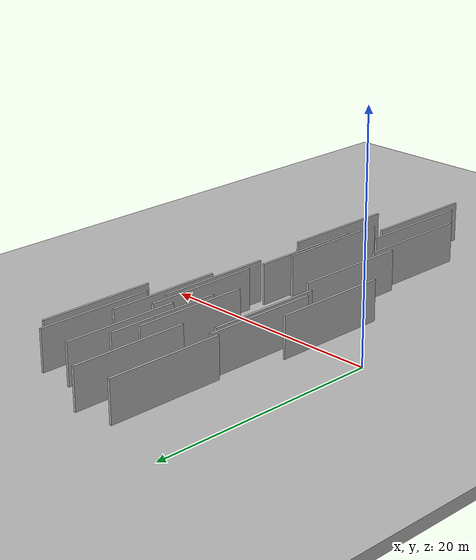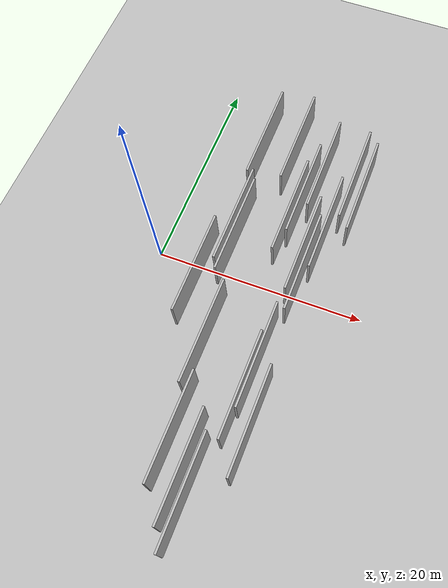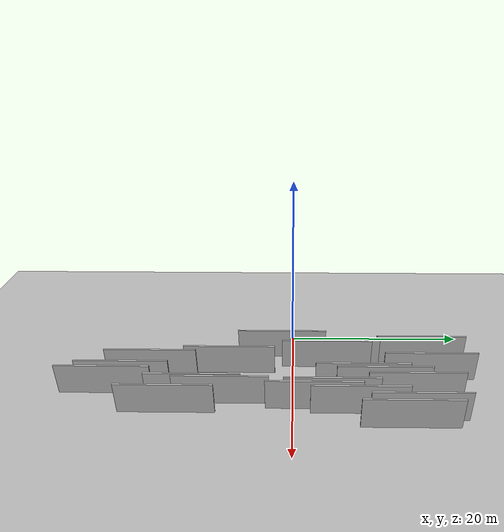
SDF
<?xml version="1.0" encoding="utf-8"?>

<sdf version="1.6">

   <world name="default">

      <gui fullscreen="0">

         <camera name="user_camera">

            <pose>-15 0 4.57585 0 0 0</pose>

            <view_controller>orbit</view_controller>

         </camera>

      </gui>

      <scene>

         <sky>

           <clouds>

             <speed>12</speed>

           </clouds>

         </sky>

         <ambient>0.4 0.4 0.4 1</ambient>

         <background>0.7 0.7 0.7 1</background>

         <shadows>1</shadows>

      </scene>

      <gravity>0 0 -9.8066</gravity>

      <magnetic_field>6e-06 2.3e-05 -4.2e-05</magnetic_field>

      <physics default="0" name="default_physics" type="ode">

         <ode>

            <solver>

               <type>quick</type>

               <iters>10</iters>

               <sor>1.0</sor>

               <use_dynamic_moi_rescaling>0</use_dynamic_moi_rescaling>

            </solver>

            <constraints>

               <cfm>0</cfm>

               <erp>0.2</erp>

               <contact_max_correcting_vel>100</contact_max_correcting_vel>

               <contact_surface_layer>0.001</contact_surface_layer>

            </constraints>

         </ode>

         <max_step_size>0.004</max_step_size>

         <real_time_factor>1</real_time_factor>

         <real_time_update_rate>250</real_time_update_rate>

      </physics>

      <light name="sun" type="directional">

         <cast_shadows>1</cast_shadows>

         <pose>0 0 10 0 0 0</pose>

         <diffuse>0.8 0.8 0.8 1</diffuse>

         <specular>0.2 0.2 0.2 1</specular>

         <attenuation>

            <range>1000</range>

            <constant>0.9</constant>

            <linear>0.01</linear>

            <quadratic>0.001</quadratic>

         </attenuation>

         <direction>-0.5 0.1 -0.9</direction>

      </light>

      <include>

         <name>ground_plane_1</name>

         <uri>model://HANNAS_ground_plane</uri>

         <pose>0 0 0  0 0 0</pose>

      </include>

      <include>

         <name>ground_plane_2</name>

         <uri>model://HANNAS_ground_plane</uri>

         <pose>100 0 0  0 0 0</pose>

      </include>

      <model name="HANNAS_wall_1">

         <static>1</static>

         <pose frame="">10.3360 -18.1644 0.0 0.000000 0.000000 1.570796</pose>

         <link name="link">

            <pose frame="">0 0 2.00 0 0 0</pose>

            <collision name="collision">

               <geometry>

                  <box>

                     <size>10.00 0.2 4.00</size>

                  </box>

               </geometry>

               <max_contacts>10</max_contacts>

               <surface>

                  <contact>

                     <ode/>

                  </contact>

                  <bounce/>

                  <friction>

                     <torsional>

                        <ode/>

                     </torsional>

                     <ode/>

                  </friction>

               </surface>

            </collision>

            <visual name="visual">

               <cast_shadows>0</cast_shadows>

               <geometry>

                  <box>

                     <size>10.00 0.2 4.00</size>

                  </box>

               </geometry>

               <material>

                  <script>

                     <uri>model://HANNAS_wall/materials/scripts</uri>

                     <uri>model://HANNAS_wall/materials/textures</uri>

                     <name>vrc/HANNAS_wall</name>

                  </script>

               </material>

            </visual>

            <self_collide>0</self_collide>

            <enable_wind>0</enable_wind>

            <kinematic>0</kinematic>

         </link>

      </model>

      <model name="HANNAS_wall_2">

         <static>1</static>

         <pose frame="">4.4183 -1.2426 0.0 0.000000 0.000000 1.570796</pose>

         <link name="link">

            <pose frame="">0 0 2.00 0 0 0</pose>

            <collision name="collision">

               <geometry>

                  <box>

                     <size>10.00 0.2 4.00</size>

                  </box>

               </geometry>

               <max_contacts>10</max_contacts>

               <surface>

                  <contact>

                     <ode/>

                  </contact>

                  <bounce/>

                  <friction>

                     <torsional>

                        <ode/>

                     </torsional>

                     <ode/>

                  </friction>

               </surface>

            </collision>

            <visual name="visual">

               <cast_shadows>0</cast_shadows>

               <geometry>

                  <box>

                     <size>10.00 0.2 4.00</size>

                  </box>

               </geometry>

               <material>

                  <script>

                     <uri>model://HANNAS_wall/materials/scripts</uri>

                     <uri>model://HANNAS_wall/materials/textures</uri>

                     <name>vrc/HANNAS_wall</name>

                  </script>

               </material>

            </visual>

            <self_collide>0</self_collide>

            <enable_wind>0</enable_wind>

            <kinematic>0</kinematic>

         </link>

      </model>

      <model name="HANNAS_wall_3">

         <static>1</static>

         <pose frame="">12.9490 4.0539 0.0 0.000000 0.000000 1.570796</pose>

         <link name="link">

            <pose frame="">0 0 2.00 0 0 0</pose>

            <collision name="collision">

               <geometry>

                  <box>

                     <size>10.00 0.2 4.00</size>

                  </box>

               </geometry>

               <max_contacts>10</max_contacts>

               <surface>

                  <contact>

                     <ode/>

                  </contact>

                  <bounce/>

                  <friction>

                     <torsional>

                        <ode/>

                     </torsional>

                     <ode/>

                  </friction>

               </surface>

            </collision>

            <visual name="visual">

               <cast_shadows>0</cast_shadows>

               <geometry>

                  <box>

                     <size>10.00 0.2 4.00</size>

                  </box>

               </geometry>

               <material>

                  <script>

                     <uri>model://HANNAS_wall/materials/scripts</uri>

                     <uri>model://HANNAS_wall/materials/textures</uri>

                     <name>vrc/HANNAS_wall</name>

                  </script>

               </material>

            </visual>

            <self_collide>0</self_collide>

            <enable_wind>0</enable_wind>

            <kinematic>0</kinematic>

         </link>

      </model>

      <model name="HANNAS_wall_4">

         <static>1</static>

         <pose frame="">5.8688 4.7515 0.0 0.000000 0.000000 1.570796</pose>

         <link name="link">

            <pose frame="">0 0 2.00 0 0 0</pose>

            <collision name="collision">

               <geometry>

                  <box>

                     <size>10.00 0.2 4.00</size>

                  </box>

               </geometry>

               <max_contacts>10</max_contacts>

               <surface>

                  <contact>

                     <ode/>

                  </contact>

                  <bounce/>

                  <friction>

                     <torsional>

                        <ode/>

                     </torsional>

                     <ode/>

                  </friction>

               </surface>

            </collision>

            <visual name="visual">

               <cast_shadows>0</cast_shadows>

               <geometry>

                  <box>

                     <size>10.00 0.2 4.00</size>

                  </box>

               </geometry>

               <material>

                  <script>

                     <uri>model://HANNAS_wall/materials/scripts</uri>

                     <uri>model://HANNAS_wall/materials/textures</uri>

                     <name>vrc/HANNAS_wall</name>

                  </script>

               </material>

            </visual>

            <self_collide>0</self_collide>

            <enable_wind>0</enable_wind>

            <kinematic>0</kinematic>

         </link>

      </model>

      <model name="HANNAS_wall_5">

         <static>1</static>

         <pose frame="">12.7881 -7.4069 0.0 0.000000 0.000000 1.570796</pose>

         <link name="link">

            <pose frame="">0 0 2.00 0 0 0</pose>

            <collision name="collision">

               <geometry>

                  <box>

                     <size>10.00 0.2 4.00</size>

                  </box>

               </geometry>

               <max_contacts>10</max_contacts>

               <surface>

                  <contact>

                     <ode/>

                  </contact>

                  <bounce/>

                  <friction>

                     <torsional>

                        <ode/>

                     </torsional>

                     <ode/>

                  </friction>

               </surface>

            </collision>

            <visual name="visual">

               <cast_shadows>0</cast_shadows>

               <geometry>

                  <box>

                     <size>10.00 0.2 4.00</size>

                  </box>

               </geometry>

               <material>

                  <script>

                     <uri>model://HANNAS_wall/materials/scripts</uri>

                     <uri>model://HANNAS_wall/materials/textures</uri>

                     <name>vrc/HANNAS_wall</name>

                  </script>

               </material>

            </visual>

            <self_collide>0</self_collide>

            <enable_wind>0</enable_wind>

            <kinematic>0</kinematic>

         </link>

      </model>

      <model name="HANNAS_wall_6">

         <static>1</static>

         <pose frame="">14.2670 -12.8791 0.0 0.000000 0.000000 1.570796</pose>

         <link name="link">

            <pose frame="">0 0 2.00 0 0 0</pose>

            <collision name="collision">

               <geometry>

                  <box>

                     <size>10.00 0.2 4.00</size>

                  </box>

               </geometry>

               <max_contacts>10</max_contacts>

               <surface>

                  <contact>

                     <ode/>

                  </contact>

                  <bounce/>

                  <friction>

                     <torsional>

                        <ode/>

                     </torsional>

                     <ode/>

                  </friction>

               </surface>

            </collision>

            <visual name="visual">

               <cast_shadows>0</cast_shadows>

               <geometry>

                  <box>

                     <size>10.00 0.2 4.00</size>

                  </box>

               </geometry>

               <material>

                  <script>

                     <uri>model://HANNAS_wall/materials/scripts</uri>

                     <uri>model://HANNAS_wall/materials/textures</uri>

                     <name>vrc/HANNAS_wall</name>

                  </script>

               </material>

            </visual>

            <self_collide>0</self_collide>

            <enable_wind>0</enable_wind>

            <kinematic>0</kinematic>

         </link>

      </model>

      <model name="HANNAS_wall_7">

         <static>1</static>

         <pose frame="">6.3783 3.7892 0.0 0.000000 0.000000 1.570796</pose>

         <link name="link">

            <pose frame="">0 0 2.00 0 0 0</pose>

            <collision name="collision">

               <geometry>

                  <box>

                     <size>10.00 0.2 4.00</size>

                  </box>

               </geometry>

               <max_contacts>10</max_contacts>

               <surface>

                  <contact>

                     <ode/>

                  </contact>

                  <bounce/>

                  <friction>

                     <torsional>

                        <ode/>

                     </torsional>

                     <ode/>

                  </friction>

               </surface>

            </collision>

            <visual name="visual">

               <cast_shadows>0</cast_shadows>

               <geometry>

                  <box>

                     <size>10.00 0.2 4.00</size>

                  </box>

               </geometry>

               <material>

                  <script>

                     <uri>model://HANNAS_wall/materials/scripts</uri>

                     <uri>model://HANNAS_wall/materials/textures</uri>

                     <name>vrc/HANNAS_wall</name>

                  </script>

               </material>

            </visual>

            <self_collide>0</self_collide>

            <enable_wind>0</enable_wind>

            <kinematic>0</kinematic>

         </link>

      </model>

      <model name="HANNAS_wall_8">

         <static>1</static>

         <pose frame="">15.1553 12.7467 0.0 0.000000 0.000000 1.570796</pose>

         <link name="link">

            <pose frame="">0 0 2.00 0 0 0</pose>

            <collision name="collision">

               <geometry>

                  <box>

                     <size>10.00 0.2 4.00</size>

                  </box>

               </geometry>

               <max_contacts>10</max_contacts>

               <surface>

                  <contact>

                     <ode/>

                  </contact>

                  <bounce/>

                  <friction>

                     <torsional>

                        <ode/>

                     </torsional>

                     <ode/>

                  </friction>

               </surface>

            </collision>

            <visual name="visual">

               <cast_shadows>0</cast_shadows>

               <geometry>

                  <box>

                     <size>10.00 0.2 4.00</size>

                  </box>

               </geometry>

               <material>

                  <script>

                     <uri>model://HANNAS_wall/materials/scripts</uri>

                     <uri>model://HANNAS_wall/materials/textures</uri>

                     <name>vrc/HANNAS_wall</name>

                  </script>

               </material>

            </visual>

            <self_collide>0</self_collide>

            <enable_wind>0</enable_wind>

            <kinematic>0</kinematic>

         </link>

      </model>

      <model name="HANNAS_wall_9">

         <static>1</static>

         <pose frame="">11.2612 -19.9085 0.0 0.000000 0.000000 1.570796</pose>

         <link name="link">

            <pose frame="">0 0 2.00 0 0 0</pose>

            <collision name="collision">

               <geometry>

                  <box>

                     <size>10.00 0.2 4.00</size>

                  </box>

               </geometry>

               <max_contacts>10</max_contacts>

               <surface>

                  <contact>

                     <ode/>

                  </contact>

                  <bounce/>

                  <friction>

                     <torsional>

                        <ode/>

                     </torsional>

                     <ode/>

                  </friction>

               </surface>

            </collision>

            <visual name="visual">

               <cast_shadows>0</cast_shadows>

               <geometry>

                  <box>

                     <size>10.00 0.2 4.00</size>

                  </box>

               </geometry>

               <material>

                  <script>

                     <uri>model://HANNAS_wall/materials/scripts</uri>

                     <uri>model://HANNAS_wall/materials/textures</uri>

                     <name>vrc/HANNAS_wall</name>

                  </script>

               </material>

            </visual>

            <self_collide>0</self_collide>

            <enable_wind>0</enable_wind>

            <kinematic>0</kinematic>

         </link>

      </model>

      <model name="HANNAS_wall_10">

         <static>1</static>

         <pose frame="">16.2234 11.6991 0.0 0.000000 0.000000 1.570796</pose>

         <link name="link">

            <pose frame="">0 0 2.00 0 0 0</pose>

            <collision name="collision">

               <geometry>

                  <box>

                     <size>10.00 0.2 4.00</size>

                  </box>

               </geometry>

               <max_contacts>10</max_contacts>

               <surface>

                  <contact>

                     <ode/>

                  </contact>

                  <bounce/>

                  <friction>

                     <torsional>

                        <ode/>

                     </torsional>

                     <ode/>

                  </friction>

               </surface>

            </collision>

            <visual name="visual">

               <cast_shadows>0</cast_shadows>

               <geometry>

                  <box>

                     <size>10.00 0.2 4.00</size>

                  </box>

               </geometry>

               <material>

                  <script>

                     <uri>model://HANNAS_wall/materials/scripts</uri>

                     <uri>model://HANNAS_wall/materials/textures</uri>

                     <name>vrc/HANNAS_wall</name>

                  </script>

               </material>

            </visual>

            <self_collide>0</self_collide>

            <enable_wind>0</enable_wind>

            <kinematic>0</kinematic>

         </link>

      </model>

      <model name="HANNAS_wall_11">

         <static>1</static>

         <pose frame="">8.5906 14.9380 0.0 0.000000 0.000000 1.570796</pose>

         <link name="link">

            <pose frame="">0 0 2.00 0 0 0</pose>

            <collision name="collision">

               <geometry>

                  <box>

                     <size>10.00 0.2 4.00</size>

                  </box>

               </geometry>

               <max_contacts>10</max_contacts>

               <surface>

                  <contact>

                     <ode/>

                  </contact>

                  <bounce/>

                  <friction>

                     <torsional>

                        <ode/>

                     </torsional>

                     <ode/>

                  </friction>

               </surface>

            </collision>

            <visual name="visual">

               <cast_shadows>0</cast_shadows>

               <geometry>

                  <box>

                     <size>10.00 0.2 4.00</size>

                  </box>

               </geometry>

               <material>

                  <script>

                     <uri>model://HANNAS_wall/materials/scripts</uri>

                     <uri>model://HANNAS_wall/materials/textures</uri>

                     <name>vrc/HANNAS_wall</name>

                  </script>

               </material>

            </visual>

            <self_collide>0</self_collide>

            <enable_wind>0</enable_wind>

            <kinematic>0</kinematic>

         </link>

      </model>

      <model name="HANNAS_wall_12">

         <static>1</static>

         <pose frame="">12.4415 -10.3054 0.0 0.000000 0.000000 1.570796</pose>

         <link name="link">

            <pose frame="">0 0 2.00 0 0 0</pose>

            <collision name="collision">

               <geometry>

                  <box>

                     <size>10.00 0.2 4.00</size>

                  </box>

               </geometry>

               <max_contacts>10</max_contacts>

               <surface>

                  <contact>

                     <ode/>

                  </contact>

                  <bounce/>

                  <friction>

                     <torsional>

                        <ode/>

                     </torsional>

                     <ode/>

                  </friction>

               </surface>

            </collision>

            <visual name="visual">

               <cast_shadows>0</cast_shadows>

               <geometry>

                  <box>

                     <size>10.00 0.2 4.00</size>

                  </box>

               </geometry>

               <material>

                  <script>

                     <uri>model://HANNAS_wall/materials/scripts</uri>

                     <uri>model://HANNAS_wall/materials/textures</uri>

                     <name>vrc/HANNAS_wall</name>

                  </script>

               </material>

            </visual>

            <self_collide>0</self_collide>

            <enable_wind>0</enable_wind>

            <kinematic>0</kinematic>

         </link>

      </model>

      <model name="HANNAS_wall_13">

         <static>1</static>

         <pose frame="">5.3582 14.4450 0.0 0.000000 0.000000 1.570796</pose>

         <link name="link">

            <pose frame="">0 0 2.00 0 0 0</pose>

            <collision name="collision">

               <geometry>

                  <box>

                     <size>10.00 0.2 4.00</size>

                  </box>

               </geometry>

               <max_contacts>10</max_contacts>

               <surface>

                  <contact>

                     <ode/>

                  </contact>

                  <bounce/>

                  <friction>

                     <torsional>

                        <ode/>

                     </torsional>

                     <ode/>

                  </friction>

               </surface>

            </collision>

            <visual name="visual">

               <cast_shadows>0</cast_shadows>

               <geometry>

                  <box>

                     <size>10.00 0.2 4.00</size>

                  </box>

               </geometry>

               <material>

                  <script>

                     <uri>model://HANNAS_wall/materials/scripts</uri>

                     <uri>model://HANNAS_wall/materials/textures</uri>

                     <name>vrc/HANNAS_wall</name>

                  </script>

               </material>

            </visual>

            <self_collide>0</self_collide>

            <enable_wind>0</enable_wind>

            <kinematic>0</kinematic>

         </link>

      </model>

      <model name="HANNAS_wall_14">

         <static>1</static>

         <pose frame="">7.5730 -6.9939 0.0 0.000000 0.000000 1.570796</pose>

         <link name="link">

            <pose frame="">0 0 2.00 0 0 0</pose>

            <collision name="collision">

               <geometry>

                  <box>

                     <size>10.00 0.2 4.00</size>

                  </box>

               </geometry>

               <max_contacts>10</max_contacts>

               <surface>

                  <contact>

                     <ode/>

                  </contact>

                  <bounce/>

                  <friction>

                     <torsional>

                        <ode/>

                     </torsional>

                     <ode/>

                  </friction>

               </surface>

            </collision>

            <visual name="visual">

               <cast_shadows>0</cast_shadows>

               <geometry>

                  <box>

                     <size>10.00 0.2 4.00</size>

                  </box>

               </geometry>

               <material>

                  <script>

                     <uri>model://HANNAS_wall/materials/scripts</uri>

                     <uri>model://HANNAS_wall/materials/textures</uri>

                     <name>vrc/HANNAS_wall</name>

                  </script>

               </material>

            </visual>

            <self_collide>0</self_collide>

            <enable_wind>0</enable_wind>

            <kinematic>0</kinematic>

         </link>

      </model>

      <model name="HANNAS_wall_15">

         <static>1</static>

         <pose frame="">12.0064 12.8541 0.0 0.000000 0.000000 1.570796</pose>

         <link name="link">

            <pose frame="">0 0 2.00 0 0 0</pose>

            <collision name="collision">

               <geometry>

                  <box>

                     <size>10.00 0.2 4.00</size>

                  </box>

               </geometry>

               <max_contacts>10</max_contacts>

               <surface>

                  <contact>

                     <ode/>

                  </contact>

                  <bounce/>

                  <friction>

                     <torsional>

                        <ode/>

                     </torsional>

                     <ode/>

                  </friction>

               </surface>

            </collision>

            <visual name="visual">

               <cast_shadows>0</cast_shadows>

               <geometry>

                  <box>

                     <size>10.00 0.2 4.00</size>

                  </box>

               </geometry>

               <material>

                  <script>

                     <uri>model://HANNAS_wall/materials/scripts</uri>

                     <uri>model://HANNAS_wall/materials/textures</uri>

                     <name>vrc/HANNAS_wall</name>

                  </script>

               </material>

            </visual>

            <self_collide>0</self_collide>

            <enable_wind>0</enable_wind>

            <kinematic>0</kinematic>

         </link>

      </model>

      <model name="HANNAS_wall_16">

         <static>1</static>

         <pose frame="">8.2997 -15.5240 0.0 0.000000 0.000000 1.570796</pose>

         <link name="link">

            <pose frame="">0 0 2.00 0 0 0</pose>

            <collision name="collision">

               <geometry>

                  <box>

                     <size>10.00 0.2 4.00</size>

                  </box>

               </geometry>

               <max_contacts>10</max_contacts>

               <surface>

                  <contact>

                     <ode/>

                  </contact>

                  <bounce/>

                  <friction>

                     <torsional>

                        <ode/>

                     </torsional>

                     <ode/>

                  </friction>

               </surface>

            </collision>

            <visual name="visual">

               <cast_shadows>0</cast_shadows>

               <geometry>

                  <box>

                     <size>10.00 0.2 4.00</size>

                  </box>

               </geometry>

               <material>

                  <script>

                     <uri>model://HANNAS_wall/materials/scripts</uri>

                     <uri>model://HANNAS_wall/materials/textures</uri>

                     <name>vrc/HANNAS_wall</name>

                  </script>

               </material>

            </visual>

            <self_collide>0</self_collide>

            <enable_wind>0</enable_wind>

            <kinematic>0</kinematic>

         </link>

      </model>

      <model name="HANNAS_wall_17">

         <static>1</static>

         <pose frame="">11.0501 9.6455 0.0 0.000000 0.000000 1.570796</pose>

         <link name="link">

            <pose frame="">0 0 2.00 0 0 0</pose>

            <collision name="collision">

               <geometry>

                  <box>

                     <size>10.00 0.2 4.00</size>

                  </box>

               </geometry>

               <max_contacts>10</max_contacts>

               <surface>

                  <contact>

                     <ode/>

                  </contact>

                  <bounce/>

                  <friction>

                     <torsional>

                        <ode/>

                     </torsional>

                     <ode/>

                  </friction>

               </surface>

            </collision>

            <visual name="visual">

               <cast_shadows>0</cast_shadows>

               <geometry>

                  <box>

                     <size>10.00 0.2 4.00</size>

                  </box>

               </geometry>

               <material>

                  <script>

                     <uri>model://HANNAS_wall/materials/scripts</uri>

                     <uri>model://HANNAS_wall/materials/textures</uri>

                     <name>vrc/HANNAS_wall</name>

                  </script>

               </material>

            </visual>

            <self_collide>0</self_collide>

            <enable_wind>0</enable_wind>

            <kinematic>0</kinematic>

         </link>

      </model>

      <model name="HANNAS_wall_18">

         <static>1</static>

         <pose frame="">13.5514 2.2035 0.0 0.000000 0.000000 1.570796</pose>

         <link name="link">

            <pose frame="">0 0 2.00 0 0 0</pose>

            <collision name="collision">

               <geometry>

                  <box>

                     <size>10.00 0.2 4.00</size>

                  </box>

               </geometry>

               <max_contacts>10</max_contacts>

               <surface>

                  <contact>

                     <ode/>

                  </contact>

                  <bounce/>

                  <friction>

                     <torsional>

                        <ode/>

                     </torsional>

                     <ode/>

                  </friction>

               </surface>

            </collision>

            <visual name="visual">

               <cast_shadows>0</cast_shadows>

               <geometry>

                  <box>

                     <size>10.00 0.2 4.00</size>

                  </box>

               </geometry>

               <material>

                  <script>

                     <uri>model://HANNAS_wall/materials/scripts</uri>

                     <uri>model://HANNAS_wall/materials/textures</uri>

                     <name>vrc/HANNAS_wall</name>

                  </script>

               </material>

            </visual>

            <self_collide>0</self_collide>

            <enable_wind>0</enable_wind>

            <kinematic>0</kinematic>

         </link>

      </model>

      <model name="HANNAS_wall_19">

         <static>1</static>

         <pose frame="">14.2128 6.8138 0.0 0.000000 0.000000 1.570796</pose>

         <link name="link">

            <pose frame="">0 0 2.00 0 0 0</pose>

            <collision name="collision">

               <geometry>

                  <box>

                     <size>10.00 0.2 4.00</size>

                  </box>

               </geometry>

               <max_contacts>10</max_contacts>

               <surface>

                  <contact>

                     <ode/>

                  </contact>

                  <bounce/>

                  <friction>

                     <torsional>

                        <ode/>

                     </torsional>

                     <ode/>

                  </friction>

               </surface>

            </collision>

            <visual name="visual">

               <cast_shadows>0</cast_shadows>

               <geometry>

                  <box>

                     <size>10.00 0.2 4.00</size>

                  </box>

               </geometry>

               <material>

                  <script>

                     <uri>model://HANNAS_wall/materials/scripts</uri>

                     <uri>model://HANNAS_wall/materials/textures</uri>

                     <name>vrc/HANNAS_wall</name>

                  </script>

               </material>

            </visual>

            <self_collide>0</self_collide>

            <enable_wind>0</enable_wind>

            <kinematic>0</kinematic>

         </link>

      </model>

      <model name="HANNAS_wall_20">

         <static>1</static>

         <pose frame="">10.4915 7.4370 0.0 0.000000 0.000000 1.570796</pose>

         <link name="link">

            <pose frame="">0 0 2.00 0 0 0</pose>

            <collision name="collision">

               <geometry>

                  <box>

                     <size>10.00 0.2 4.00</size>

                  </box>

               </geometry>

               <max_contacts>10</max_contacts>

               <surface>

                  <contact>

                     <ode/>

                  </contact>

                  <bounce/>

                  <friction>

                     <torsional>

                        <ode/>

                     </torsional>

                     <ode/>

                  </friction>

               </surface>

            </collision>

            <visual name="visual">

               <cast_shadows>0</cast_shadows>

               <geometry>

                  <box>

                     <size>10.00 0.2 4.00</size>

                  </box>

               </geometry>

               <material>

                  <script>

                     <uri>model://HANNAS_wall/materials/scripts</uri>

                     <uri>model://HANNAS_wall/materials/textures</uri>

                     <name>vrc/HANNAS_wall</name>

                  </script>

               </material>

            </visual>

            <self_collide>0</self_collide>

            <enable_wind>0</enable_wind>

            <kinematic>0</kinematic>

         </link>

      </model>

   </world>

</sdf>

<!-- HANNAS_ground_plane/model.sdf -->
<sdf version="1.4">
<model name="HANNAS_ground_plane">
  <static>true</static>
    <link name="link">
      <collision name="collision">
        <geometry>
          <plane>
            <normal>0 0 1</normal>
            <size>1000 1000</size>
          </plane>
        </geometry>
        <surface>
          <friction>
            <ode>
              <mu>100</mu>
              <mu2>50</mu2>
            </ode>
          </friction>
        </surface>
      </collision>
      <visual name="visual">
        <cast_shadows>false</cast_shadows>
        <geometry>
          <plane>
            <normal>0 0 1</normal>
            <size>1000 1000</size>
          </plane>
        </geometry>
        <material>
          <script>
            <uri>model://HANNAS_ground_plane/materials/scripts/HANNAS_ground_plane.material</uri>
	    <uri>model://HANNAS_ground_plane/materials/textures</uri>
            <name>HANNASGroundPlane/Image</name>
          </script>
        </material>
      </visual>
    </link>
  </model>
</sdf>
